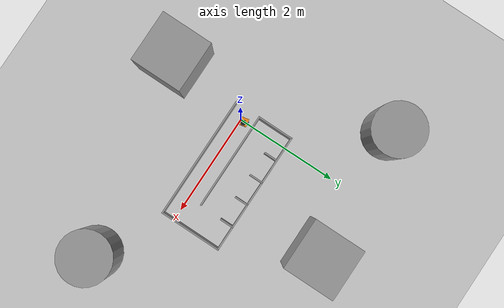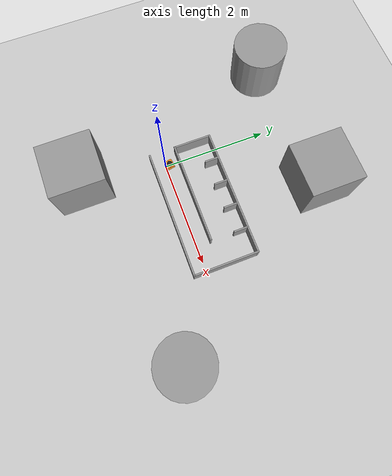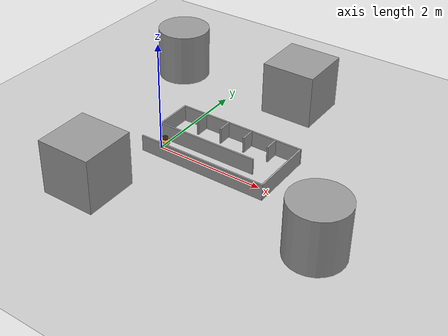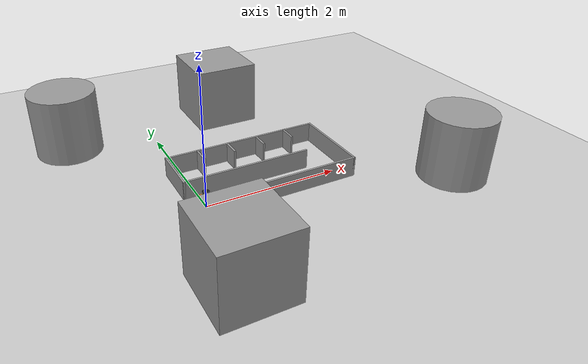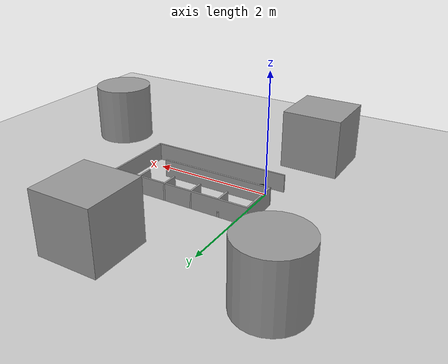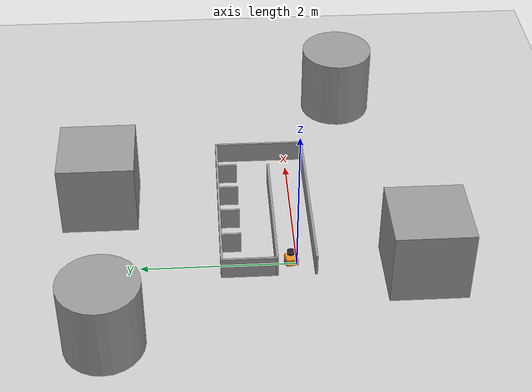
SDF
<sdf version="1.7">
 <world name="default">
  <light name="sun" type="directional">
   <pose>0 0 10 0 -0 0</pose>
   <diffuse>0.8 0.8 0.8 1</diffuse>
   <specular>0.2 0.2 0.2 1</specular>
   <attenuation>
    <range>1000</range>
    <constant>0.9</constant>
    <linear>0.01</linear>
    <quadratic>0.001</quadratic>
   </attenuation>
   <direction>-0.5 0.1 -0.9</direction>
   <spot><inner_angle>0</inner_angle><outer_angle>0</outer_angle><falloff>0</falloff></spot>
  </light>
  <model name="ground_plane">
   <static>1</static>
   <link name="link">
    <collision name="collision">
     <geometry><plane><normal>0 0 1</normal><size>100 100</size></plane></geometry>
     <surface><friction><ode><mu>100</mu><mu2>50</mu2></ode></friction></surface>
    </collision>
    <visual name="visual">
     <cast_shadows>0</cast_shadows>
     <geometry><plane><normal>0 0 1</normal><size>100 100</size></plane></geometry>
     <material>
      <script><uri>file://media/materials/scripts/gazebo.material</uri><name>Gazebo/Grey</name></script>
     </material>
    </visual>
   </link>
  </model>
  <gravity>0 0 -9.8</gravity>
  <magnetic_field>6e-06 2.3e-05 -4.2e-05</magnetic_field>
  <atmosphere type="adiabatic"/>
  <physics type="ode">
   <max_step_size>0.001</max_step_size>
   <real_time_factor>1</real_time_factor>
   <real_time_update_rate>1000</real_time_update_rate>
  </physics>
  <scene><ambient>0.4 0.4 0.4 1</ambient><background>0.7 0.7 0.7 1</background><shadows>1</shadows></scene>
  <audio><device>default</device></audio>
  <spherical_coordinates>
   <surface_model>EARTH_WGS84</surface_model>
   <latitude_deg>0</latitude_deg>
   <longitude_deg>0</longitude_deg>
   <elevation>0</elevation>
   <heading_deg>0</heading_deg>
  </spherical_coordinates>
  <model name="my_bot">
   <link name="base_link">
    <inertial>
     <pose>0.004032 0 0.014194 0 -0 0</pose>
     <mass>0.62</mass>
     <inertia>
      <ixx>0.0023779</ixx>
      <ixy>0</ixy>
      <ixz>-0.000214516</ixz>
      <iyy>0.00250232</iyy>
      <iyz>0</iyz>
      <izz>0.00212522</izz>
     </inertia>
    </inertial>
    <collision name="base_link_fixed_joint_lump__chassis_collision">
     <geometry><box><size>0.15 0.15 0.1</size></box></geometry>
    </collision>
    <collision name="base_link_fixed_joint_lump__back_caster_wheel_collision_1">
     <pose>-0.06 0 -0.06 0 -0 0</pose>
     <geometry><sphere><radius>0.01</radius></sphere></geometry>
     <surface><friction><ode><mu>0.001</mu><mu2>0.001</mu2></ode></friction></surface>
    </collision>
    <collision name="base_link_fixed_joint_lump__front_caster_wheel_collision_2">
     <pose>0.06 0 -0.06 0 -0 0</pose>
     <geometry><sphere><radius>0.01</radius></sphere></geometry>
     <surface><friction><ode><mu>0.001</mu><mu2>0.001</mu2></ode></friction></surface>
    </collision>
    <collision name="base_link_fixed_joint_lump__laser_frame_collision_3">
     <pose>0.025 0 0.1 0 -0 0</pose>
     <geometry><cylinder><length>0.04</length><radius>0.05</radius></cylinder></geometry>
    </collision>
    <visual name="base_link_fixed_joint_lump__chassis_visual">
     <geometry><box><size>0.15 0.15 0.1</size></box></geometry>
     <material>
      <script><name>Gazebo/Orange</name><uri>file://media/materials/scripts/gazebo.material</uri></script>
     </material>
    </visual>
    <visual name="base_link_fixed_joint_lump__back_caster_wheel_visual_1">
     <pose>-0.06 0 -0.06 0 -0 0</pose>
     <geometry><sphere><radius>0.01</radius></sphere></geometry>
     <material>
      <script><name>Gazebo/White</name><uri>file://media/materials/scripts/gazebo.material</uri></script>
     </material>
    </visual>
    <visual name="base_link_fixed_joint_lump__front_caster_wheel_visual_2">
     <pose>0.06 0 -0.06 0 -0 0</pose>
     <geometry><sphere><radius>0.01</radius></sphere></geometry>
     <material>
      <script><name>Gazebo/White</name><uri>file://media/materials/scripts/gazebo.material</uri></script>
     </material>
    </visual>
    <visual name="base_link_fixed_joint_lump__laser_frame_visual_3">
     <pose>0.025 0 0.1 0 -0 0</pose>
     <geometry><cylinder><length>0.04</length><radius>0.05</radius></cylinder></geometry>
     <material>
      <script><name>Gazebo/Black</name><uri>file://media/materials/scripts/gazebo.material</uri></script>
     </material>
    </visual>
    <visual name="base_link_fixed_joint_lump__laser_frame_visual_4">
     <pose>0.025 0 0.05 0 -0 0</pose>
     <geometry><cylinder><length>0.1</length><radius>0.01</radius></cylinder></geometry>
     <material>
      <script><name>Gazebo/Black</name><uri>file://media/materials/scripts/gazebo.material</uri></script>
     </material>
    </visual>
    <sensor name="laser" type="ray">
     <visualize>1</visualize>
     <update_rate>10</update_rate>
     <ray>
      <scan>
       <horizontal>
        <samples>360</samples>
        <min_angle>-3.14</min_angle>
        <max_angle>3.14</max_angle>
        <resolution>1</resolution>
       </horizontal>
       <vertical><samples>1</samples><min_angle>0</min_angle><max_angle>0</max_angle></vertical>
      </scan>
      <range><min>0.15</min><max>12</max></range>
     </ray>
     <plugin name="laser_controller" filename="libgazebo_ros_ray_sensor.so">
      <ros><argument>~/out:=scan</argument></ros>
      <output_type>sensor_msgs/LaserScan</output_type>
      <frame_name>laser_frame</frame_name>
     </plugin>
     <pose>0.025 0 0.1 0 -0 0</pose>
    </sensor>
   </link>
   <joint name="left_wheel_joint" type="revolute">
    <pose relative_to="base_link">0 0.075 -0.037 -1.5708 0 0</pose>
    <parent>base_link</parent>
    <child>left_wheel</child>
    <axis>
     <xyz>0 0 1</xyz>
     <limit><lower>-1e+16</lower><upper>1e+16</upper></limit>
     <dynamics><spring_reference>0</spring_reference><spring_stiffness>0</spring_stiffness></dynamics>
    </axis>
   </joint>
   <link name="left_wheel">
    <pose relative_to="left_wheel_joint">0 0 0 0 -0 0</pose>
    <inertial>
     <mass>0.05</mass>
     <inertia>
      <ixx>1.64292e-05</ixx>
      <ixy>0</ixy>
      <ixz>0</ixz>
      <iyy>1.64292e-05</iyy>
      <iyz>0</iyz>
      <izz>2.7225e-05</izz>
     </inertia>
    </inertial>
    <collision name="left_wheel_collision">
     <geometry><sphere><radius>0.033</radius></sphere></geometry>
    </collision>
    <visual name="left_wheel_visual">
     <geometry><cylinder><length>0.026</length><radius>0.033</radius></cylinder></geometry>
     <material>
      <script><name>Gazebo/Blue</name><uri>file://media/materials/scripts/gazebo.material</uri></script>
     </material>
    </visual>
   </link>
   <joint name="right_wheel_joint" type="revolute">
    <pose relative_to="base_link">0 -0.075 -0.037 1.5708 -0 0</pose>
    <parent>base_link</parent>
    <child>right_wheel</child>
    <axis>
     <xyz>0 0 -1</xyz>
     <limit><lower>-1e+16</lower><upper>1e+16</upper></limit>
     <dynamics><spring_reference>0</spring_reference><spring_stiffness>0</spring_stiffness></dynamics>
    </axis>
   </joint>
   <link name="right_wheel">
    <pose relative_to="right_wheel_joint">0 0 0 0 -0 0</pose>
    <inertial>
     <mass>0.05</mass>
     <inertia>
      <ixx>1.64292e-05</ixx>
      <ixy>0</ixy>
      <ixz>0</ixz>
      <iyy>1.64292e-05</iyy>
      <iyz>0</iyz>
      <izz>2.7225e-05</izz>
     </inertia>
    </inertial>
    <collision name="right_wheel_collision">
     <geometry><sphere><radius>0.033</radius></sphere></geometry>
    </collision>
    <visual name="right_wheel_visual">
     <geometry><cylinder><length>0.026</length><radius>0.033</radius></cylinder></geometry>
     <material>
      <script><name>Gazebo/Blue</name><uri>file://media/materials/scripts/gazebo.material</uri></script>
     </material>
    </visual>
   </link>
   <static>0</static>
   <plugin name="gazebo_ros2_control" filename="libgazebo_ros2_control.so">
    <parameters>/home/boat1470/finding_robot_ws/install/articubot_one/share/articubot_one/config/my_controllers.yaml</parameters>
   </plugin>
   <pose>0.010292 0.073347 0.07 2.3e-05 -0 0.194032</pose>
  </model>
  <model name="map_completition">
   <pose>1.00354 0.366787 0 0 -0 0</pose>
   <link name="Wall_0">
    <collision name="Wall_0_Collision">
     <geometry><box><size>2.43 0.03 0.3</size></box></geometry>
     <pose>0 0 0.15 0 -0 0</pose>
    </collision>
    <visual name="Wall_0_Visual">
     <pose>0 0 0.15 0 -0 0</pose>
     <geometry><box><size>2.43 0.03 0.3</size></box></geometry>
     <material>
      <script><uri>file://media/materials/scripts/gazebo.material</uri><name>Gazebo/Grey</name></script>
      <ambient>1 1 1 1</ambient>
     </material>
     <meta><layer>0</layer></meta>
    </visual>
    <pose>-0 -0.6 0 0 -0 0</pose>
   </link>
   <link name="Wall_10">
    <collision name="Wall_10_Collision">
     <geometry><box><size>0.28 0.03 0.3</size></box></geometry>
     <pose>0 0 0.15 0 -0 0</pose>
    </collision>
    <visual name="Wall_10_Visual">
     <pose>0 0 0.15 0 -0 0</pose>
     <geometry><box><size>0.28 0.03 0.3</size></box></geometry>
     <material>
      <script><uri>file://media/materials/scripts/gazebo.material</uri><name>Gazebo/Grey</name></script>
      <ambient>1 1 1 1</ambient>
     </material>
     <meta><layer>0</layer></meta>
    </visual>
    <pose>-0.72 0.475 0 0 -0 -1.5708</pose>
   </link>
   <link name="Wall_12">
    <collision name="Wall_12_Collision">
     <geometry><box><size>0.28 0.03 0.3</size></box></geometry>
     <pose>0 0 0.15 0 -0 0</pose>
    </collision>
    <visual name="Wall_12_Visual">
     <pose>0 0 0.15 0 -0 0</pose>
     <geometry><box><size>0.28 0.03 0.3</size></box></geometry>
     <material>
      <script><uri>file://media/materials/scripts/gazebo.material</uri><name>Gazebo/Grey</name></script>
      <ambient>1 1 1 1</ambient>
     </material>
     <meta><layer>0</layer></meta>
    </visual>
    <pose>-0.24 0.475 0 0 -0 -1.5708</pose>
   </link>
   <link name="Wall_14">
    <collision name="Wall_14_Collision">
     <geometry><box><size>0.28 0.03 0.3</size></box></geometry>
     <pose>0 0 0.15 0 -0 0</pose>
    </collision>
    <visual name="Wall_14_Visual">
     <pose>0 0 0.15 0 -0 0</pose>
     <geometry><box><size>0.28 0.03 0.3</size></box></geometry>
     <material>
      <script><uri>file://media/materials/scripts/gazebo.material</uri><name>Gazebo/Grey</name></script>
      <ambient>1 1 1 1</ambient>
     </material>
     <meta><layer>0</layer></meta>
    </visual>
    <pose>0.24 0.475 0 0 -0 -1.5708</pose>
   </link>
   <link name="Wall_16">
    <collision name="Wall_16_Collision">
     <geometry><box><size>0.28 0.03 0.3</size></box></geometry>
     <pose>0 0 0.15 0 -0 0</pose>
    </collision>
    <visual name="Wall_16_Visual">
     <pose>0 0 0.15 0 -0 0</pose>
     <geometry><box><size>0.28 0.03 0.3</size></box></geometry>
     <material>
      <script><uri>file://media/materials/scripts/gazebo.material</uri><name>Gazebo/Grey</name></script>
      <ambient>1 1 1 1</ambient>
     </material>
     <meta><layer>0</layer></meta>
    </visual>
    <pose>0.72 0.475 0 0 -0 -1.5708</pose>
   </link>
   <link name="Wall_2">
    <collision name="Wall_2_Collision">
     <geometry><box><size>0.73 0.03 0.3</size></box></geometry>
     <pose>0 0 0.15 0 -0 0</pose>
    </collision>
    <visual name="Wall_2_Visual">
     <pose>0 0 0.15 0 -0 0</pose>
     <geometry><box><size>0.73 0.03 0.3</size></box></geometry>
     <material>
      <script><uri>file://media/materials/scripts/gazebo.material</uri><name>Gazebo/Grey</name></script>
      <ambient>1 1 1 1</ambient>
     </material>
     <meta><layer>0</layer></meta>
    </visual>
    <pose>-1.2 0.25 0 0 -0 1.5708</pose>
   </link>
   <link name="Wall_4">
    <collision name="Wall_4_Collision">
     <geometry><box><size>1.93 0.03 0.3</size></box></geometry>
     <pose>0 0 0.15 0 -0 0</pose>
    </collision>
    <visual name="Wall_4_Visual">
     <pose>0 0 0.15 0 -0 0</pose>
     <geometry><box><size>1.93 0.03 0.3</size></box></geometry>
     <material>
      <script><uri>file://media/materials/scripts/gazebo.material</uri><name>Gazebo/Grey</name></script>
      <ambient>1 1 1 1</ambient>
     </material>
     <meta><layer>0</layer></meta>
    </visual>
    <pose>-0.25 -0.1 0 0 -0 0</pose>
   </link>
   <link name="Wall_6">
    <collision name="Wall_6_Collision">
     <geometry><box><size>1.23 0.03 0.3</size></box></geometry>
     <pose>0 0 0.15 0 -0 0</pose>
    </collision>
    <visual name="Wall_6_Visual">
     <pose>0 0 0.15 0 -0 0</pose>
     <geometry><box><size>1.23 0.03 0.3</size></box></geometry>
     <material>
      <script><uri>file://media/materials/scripts/gazebo.material</uri><name>Gazebo/Grey</name></script>
      <ambient>1 1 1 1</ambient>
     </material>
     <meta><layer>0</layer></meta>
    </visual>
    <pose>1.2 -0 0 0 -0 1.5708</pose>
   </link>
   <link name="Wall_8">
    <collision name="Wall_8_Collision">
     <geometry><box><size>2.43 0.03 0.3</size></box></geometry>
     <pose>0 0 0.15 0 -0 0</pose>
    </collision>
    <visual name="Wall_8_Visual">
     <pose>0 0 0.15 0 -0 0</pose>
     <geometry><box><size>2.43 0.03 0.3</size></box></geometry>
     <material>
      <script><uri>file://media/materials/scripts/gazebo.material</uri><name>Gazebo/Grey</name></script>
      <ambient>1 1 1 1</ambient>
     </material>
     <meta><layer>0</layer></meta>
    </visual>
    <pose>-0 0.6 0 0 -0 0</pose>
   </link>
   <static>1</static>
  </model>
  <model name="unit_cylinder">
   <pose>-1.28207 2.40305 0.499998 3e-06 -4e-06 0</pose>
   <link name="link">
    <inertial>
     <mass>1</mass>
     <inertia><ixx>0.145833</ixx><ixy>0</ixy><ixz>0</ixz><iyy>0.145833</iyy><iyz>0</iyz><izz>0.125</izz></inertia>
    </inertial>
    <collision name="collision">
     <geometry><cylinder><radius>0.5</radius><length>1</length></cylinder></geometry>
    </collision>
    <visual name="visual">
     <geometry><cylinder><radius>0.5</radius><length>1</length></cylinder></geometry>
     <material>
      <script><name>Gazebo/Grey</name><uri>file://media/materials/scripts/gazebo.material</uri></script>
     </material>
    </visual>
   </link>
  </model>
  <model name="unit_box">
   <pose>1.27738 2.54771 0.499995 0 -1e-05 0</pose>
   <link name="link">
    <inertial>
     <mass>1</mass>
     <inertia>
      <ixx>0.166667</ixx>
      <ixy>0</ixy>
      <ixz>0</ixz>
      <iyy>0.166667</iyy>
      <iyz>0</iyz>
      <izz>0.166667</izz>
     </inertia>
    </inertial>
    <collision name="collision"><geometry><box><size>1 1 1</size></box></geometry></collision>
    <visual name="visual">
     <geometry><box><size>1 1 1</size></box></geometry>
     <material>
      <script><name>Gazebo/Grey</name><uri>file://media/materials/scripts/gazebo.material</uri></script>
     </material>
    </visual>
   </link>
  </model>
  <model name="unit_box_0">
   <pose>-0.241755 -1.59244 0.499995 0 1e-05 0</pose>
   <link name="link">
    <inertial>
     <mass>1</mass>
     <inertia>
      <ixx>0.166667</ixx>
      <ixy>0</ixy>
      <ixz>0</ixz>
      <iyy>0.166667</iyy>
      <iyz>0</iyz>
      <izz>0.166667</izz>
     </inertia>
    </inertial>
    <collision name="collision"><geometry><box><size>1 1 1</size></box></geometry></collision>
    <visual name="visual">
     <geometry><box><size>1 1 1</size></box></geometry>
     <material>
      <script><name>Gazebo/Grey</name><uri>file://media/materials/scripts/gazebo.material</uri></script>
     </material>
    </visual>
   </link>
  </model>
  <model name="unit_cylinder_0">
   <pose>3.50268 -0.857637 0.499997 3e-06 4e-06 -0</pose>
   <link name="link">
    <inertial>
     <mass>1</mass>
     <inertia><ixx>0.145833</ixx><ixy>0</ixy><ixz>0</ixz><iyy>0.145833</iyy><iyz>0</iyz><izz>0.125</izz></inertia>
    </inertial>
    <collision name="collision">
     <geometry><cylinder><radius>0.5</radius><length>1</length></cylinder></geometry>
    </collision>
    <visual name="visual">
     <geometry><cylinder><radius>0.5</radius><length>1</length></cylinder></geometry>
     <material>
      <script><name>Gazebo/Grey</name><uri>file://media/materials/scripts/gazebo.material</uri></script>
     </material>
    </visual>
   </link>
  </model>
 </world>
</sdf>
